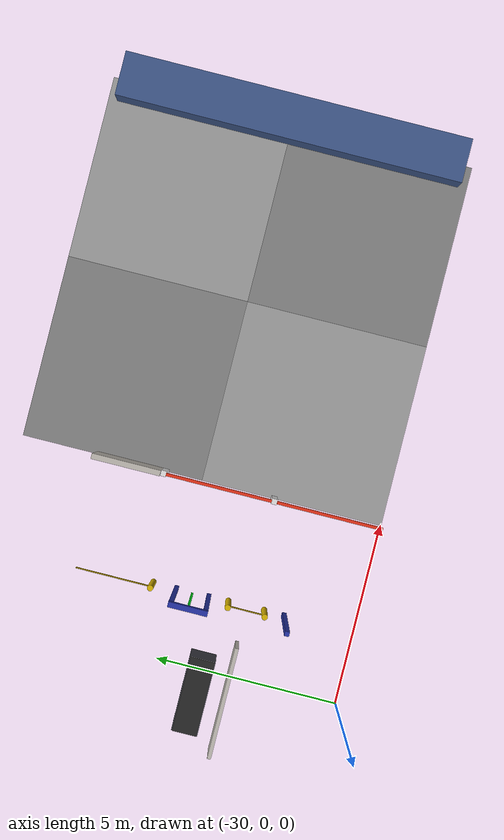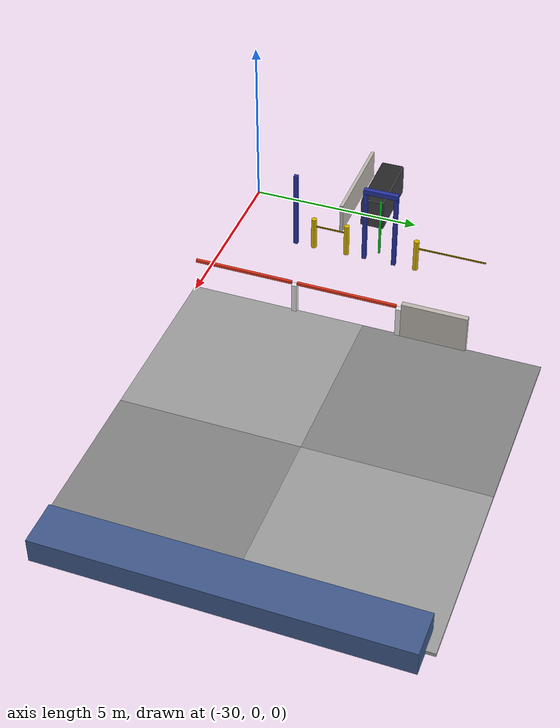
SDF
<sdf version="1.10">
 <world name="airport_terminal_world">
  <model name="vtile_0_5">
   <static>true</static>
   <pose>-22.5 2.5 0.05 0 0 0</pose>
   <link name="link">
    <visual name="vis">
     <geometry><box><size>5.0 5.0 0.1</size></box></geometry>
     <material><ambient>0.62 0.62 0.62 1.0</ambient><diffuse>0.62 0.62 0.62 1.0</diffuse></material>
    </visual>
   </link>
  </model>
  <model name="vtile_0_6">
   <static>true</static>
   <pose>-22.5 7.5 0.05 0 0 0</pose>
   <link name="link">
    <visual name="vis">
     <geometry><box><size>5.0 5.0 0.1</size></box></geometry>
     <material><ambient>0.52 0.52 0.52 1.0</ambient><diffuse>0.52 0.52 0.52 1.0</diffuse></material>
    </visual>
   </link>
  </model>
  <model name="vtile_1_5">
   <static>true</static>
   <pose>-17.5 2.5 0.05 0 0 0</pose>
   <link name="link">
    <visual name="vis">
     <geometry><box><size>5.0 5.0 0.1</size></box></geometry>
     <material><ambient>0.52 0.52 0.52 1.0</ambient><diffuse>0.52 0.52 0.52 1.0</diffuse></material>
    </visual>
   </link>
  </model>
  <model name="vtile_1_6">
   <static>true</static>
   <pose>-17.5 7.5 0.05 0 0 0</pose>
   <link name="link">
    <visual name="vis">
     <geometry><box><size>5.0 5.0 0.1</size></box></geometry>
     <material><ambient>0.62 0.62 0.62 1.0</ambient><diffuse>0.62 0.62 0.62 1.0</diffuse></material>
    </visual>
   </link>
  </model>
  <model name="cluster_4_bench">
   <static>true</static>
   <pose>-15.0 5.0 0.35 0.0 0.0 0.0</pose>
   <link name="link">
    <collision name="col"><geometry><box><size>1.2 9.5 0.7</size></box></geometry></collision>
    <visual name="vis">
     <geometry><box><size>1.2 9.5 0.7</size></box></geometry>
     <material><ambient>0.25 0.35 0.55 1.0</ambient><diffuse>0.25 0.35 0.55 1.0</diffuse></material>
    </visual>
   </link>
  </model>
  <model name="xray_3_l">
   <static>true</static>
   <pose>-28.0 1.95 1.2 0 0 0</pose>
   <link name="link">
    <collision name="col"><geometry><box><size>0.12 0.12 2.4</size></box></geometry></collision>
    <visual name="vis">
     <geometry><box><size>0.12 0.12 2.4</size></box></geometry>
     <material><ambient>0.15 0.2 0.65 1.0</ambient><diffuse>0.15 0.2 0.65 1.0</diffuse></material>
    </visual>
   </link>
  </model>
  <model name="xray_4_l">
   <static>true</static>
   <pose>-28.0 4.95 1.2 0 0 0</pose>
   <link name="link">
    <collision name="col"><geometry><box><size>0.12 0.12 2.4</size></box></geometry></collision>
    <visual name="vis">
     <geometry><box><size>0.12 0.12 2.4</size></box></geometry>
     <material><ambient>0.15 0.2 0.65 1.0</ambient><diffuse>0.15 0.2 0.65 1.0</diffuse></material>
    </visual>
   </link>
  </model>
  <model name="xray_4_r">
   <static>true</static>
   <pose>-28.0 4.05 1.2 0 0 0</pose>
   <link name="link">
    <collision name="col"><geometry><box><size>0.12 0.12 2.4</size></box></geometry></collision>
    <visual name="vis">
     <geometry><box><size>0.12 0.12 2.4</size></box></geometry>
     <material><ambient>0.15 0.2 0.65 1.0</ambient><diffuse>0.15 0.2 0.65 1.0</diffuse></material>
    </visual>
   </link>
  </model>
  <model name="xray_4_top">
   <static>true</static>
   <pose>-28.0 4.5 2.38 0 0 0</pose>
   <link name="link">
    <visual name="vis">
     <geometry><box><size>0.14 1.02 0.14</size></box></geometry>
     <material><ambient>0.15 0.2 0.65 1.0</ambient><diffuse>0.15 0.2 0.65 1.0</diffuse></material>
    </visual>
   </link>
  </model>
  <model name="xray_4_led">
   <static>true</static>
   <pose>-28.0 4.5 1.2 0 0 0</pose>
   <link name="link">
    <visual name="vis">
     <geometry><box><size>0.05 0.06 1.8</size></box></geometry>
     <material>
      <ambient>0.0 0.85 0.1 1.0</ambient>
      <diffuse>0.0 0.85 0.1 1.0</diffuse>
      <emissive>0.0 0.45 0.05 1.0</emissive>
     </material>
    </visual>
   </link>
  </model>
  <model name="sec_barrier_3_arm">
   <static>true</static>
   <pose>-25.0 1.5 1.05 0 0 0</pose>
   <link name="link">
    <collision name="col"><geometry><box><size>0.08 2.85 0.08</size></box></geometry></collision>
    <visual name="vis">
     <geometry><box><size>0.08 2.85 0.08</size></box></geometry>
     <material><ambient>0.9 0.2 0.1 1.0</ambient><diffuse>0.9 0.2 0.1 1.0</diffuse></material>
    </visual>
   </link>
  </model>
  <model name="sec_barrier_3_post_r">
   <static>true</static>
   <pose>-25.0 3.0 0.5 0 0 0</pose>
   <link name="link">
    <collision name="col"><geometry><box><size>0.15 0.15 1.0</size></box></geometry></collision>
    <visual name="vis">
     <geometry><box><size>0.15 0.15 1.0</size></box></geometry>
     <material><ambient>0.9 0.9 0.9 1.0</ambient><diffuse>0.9 0.9 0.9 1.0</diffuse></material>
    </visual>
   </link>
  </model>
  <model name="sec_barrier_4_post_l">
   <static>true</static>
   <pose>-25.0 3.0 0.5 0 0 0</pose>
   <link name="link">
    <collision name="col"><geometry><box><size>0.15 0.15 1.0</size></box></geometry></collision>
    <visual name="vis">
     <geometry><box><size>0.15 0.15 1.0</size></box></geometry>
     <material><ambient>0.9 0.9 0.9 1.0</ambient><diffuse>0.9 0.9 0.9 1.0</diffuse></material>
    </visual>
   </link>
  </model>
  <model name="sec_barrier_4_arm">
   <static>true</static>
   <pose>-25.0 4.5 1.05 0 0 0</pose>
   <link name="link">
    <collision name="col"><geometry><box><size>0.08 2.85 0.08</size></box></geometry></collision>
    <visual name="vis">
     <geometry><box><size>0.08 2.85 0.08</size></box></geometry>
     <material><ambient>0.9 0.2 0.1 1.0</ambient><diffuse>0.9 0.2 0.1 1.0</diffuse></material>
    </visual>
   </link>
  </model>
  <model name="sec_barrier_4_post_r">
   <static>true</static>
   <pose>-25.0 6.0 0.5 0 0 0</pose>
   <link name="link">
    <collision name="col"><geometry><box><size>0.15 0.15 1.0</size></box></geometry></collision>
    <visual name="vis">
     <geometry><box><size>0.15 0.15 1.0</size></box></geometry>
     <material><ambient>0.9 0.9 0.9 1.0</ambient><diffuse>0.9 0.9 0.9 1.0</diffuse></material>
    </visual>
   </link>
  </model>
  <model name="sec_barrier_wall_n">
   <static>true</static>
   <pose>-25.0 7.0 0.6 0 0 0</pose>
   <link name="link">
    <collision name="col"><geometry><box><size>0.15 1.85 1.2</size></box></geometry></collision>
    <visual name="vis">
     <geometry><box><size>0.15 1.85 1.2</size></box></geometry>
     <material><ambient>0.75 0.73 0.7 1.0</ambient><diffuse>0.75 0.73 0.7 1.0</diffuse></material>
    </visual>
   </link>
  </model>
  <model name="sec_poll_34_a">
   <static>true</static>
   <pose>-28.0 2.5 0.5 0 0 0</pose>
   <link name="link">
    <collision name="col">
     <geometry><cylinder><radius>0.08</radius><length>1.0</length></cylinder></geometry>
    </collision>
    <visual name="vis">
     <geometry><cylinder><radius>0.08</radius><length>1.0</length></cylinder></geometry>
     <material><ambient>0.85 0.7 0.0 1.0</ambient><diffuse>0.85 0.7 0.0 1.0</diffuse></material>
    </visual>
   </link>
  </model>
  <model name="sec_poll_34_b">
   <static>true</static>
   <pose>-28.0 3.5 0.5 0 0 0</pose>
   <link name="link">
    <collision name="col">
     <geometry><cylinder><radius>0.08</radius><length>1.0</length></cylinder></geometry>
    </collision>
    <visual name="vis">
     <geometry><cylinder><radius>0.08</radius><length>1.0</length></cylinder></geometry>
     <material><ambient>0.85 0.7 0.0 1.0</ambient><diffuse>0.85 0.7 0.0 1.0</diffuse></material>
    </visual>
   </link>
  </model>
  <model name="sec_rope_34">
   <static>true</static>
   <pose>-28.0 3.0 0.75 0 0 0</pose>
   <link name="link">
    <visual name="vis">
     <geometry><box><size>0.03 1.0 0.04</size></box></geometry>
     <material><ambient>0.6 0.5 0.0 1.0</ambient><diffuse>0.6 0.5 0.0 1.0</diffuse></material>
    </visual>
   </link>
  </model>
  <model name="sec_poll_wn_a">
   <static>true</static>
   <pose>-28.0 5.6 0.5 0 0 0</pose>
   <link name="link">
    <collision name="col">
     <geometry><cylinder><radius>0.08</radius><length>1.0</length></cylinder></geometry>
    </collision>
    <visual name="vis">
     <geometry><cylinder><radius>0.08</radius><length>1.0</length></cylinder></geometry>
     <material><ambient>0.85 0.7 0.0 1.0</ambient><diffuse>0.85 0.7 0.0 1.0</diffuse></material>
    </visual>
   </link>
  </model>
  <model name="sec_rope_wn">
   <static>true</static>
   <pose>-28.0 6.6 0.75 0 0 0</pose>
   <link name="link">
    <visual name="vis">
     <geometry><box><size>0.03 2.1 0.04</size></box></geometry>
     <material><ambient>0.6 0.5 0.0 1.0</ambient><diffuse>0.6 0.5 0.0 1.0</diffuse></material>
    </visual>
   </link>
  </model>
  <model name="sec_conv_div_n">
   <static>true</static>
   <pose>-30.5 3.0 0.45 0 0 0</pose>
   <link name="link">
    <collision name="col"><geometry><box><size>3.0 0.1 0.9</size></box></geometry></collision>
    <visual name="vis">
     <geometry><box><size>3.0 0.1 0.9</size></box></geometry>
     <material><ambient>0.75 0.73 0.7 1.0</ambient><diffuse>0.75 0.73 0.7 1.0</diffuse></material>
    </visual>
   </link>
  </model>
  <model name="sec_conv_4_body">
   <static>true</static>
   <pose>-30.5 3.8 0.45 0 0 0</pose>
   <link name="link">
    <collision name="col"><geometry><box><size>2.0 0.7 0.9</size></box></geometry></collision>
    <visual name="vis">
     <geometry><box><size>2.0 0.7 0.9</size></box></geometry>
     <material><ambient>0.25 0.25 0.28 1.0</ambient><diffuse>0.25 0.25 0.28 1.0</diffuse></material>
    </visual>
   </link>
  </model>
  <model name="sec_conv_4_belt">
   <static>true</static>
   <pose>-30.5 3.8 0.92 0 0 0</pose>
   <link name="link">
    <visual name="vis">
     <geometry><box><size>2.0 0.65 0.04</size></box></geometry>
     <material><ambient>0.15 0.15 0.15 1.0</ambient><diffuse>0.15 0.15 0.15 1.0</diffuse></material>
    </visual>
   </link>
  </model>
 </world>
</sdf>
